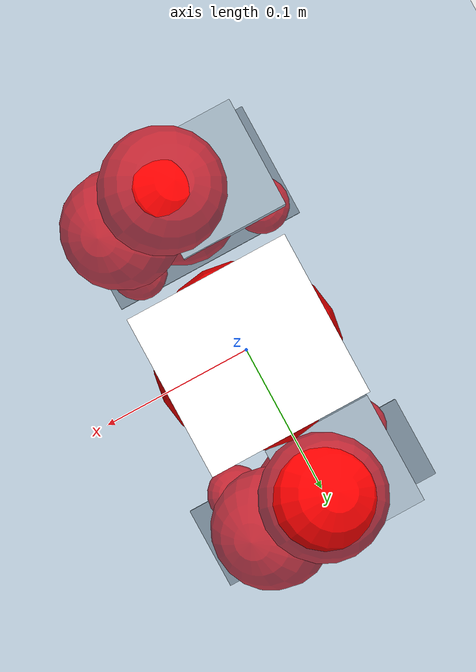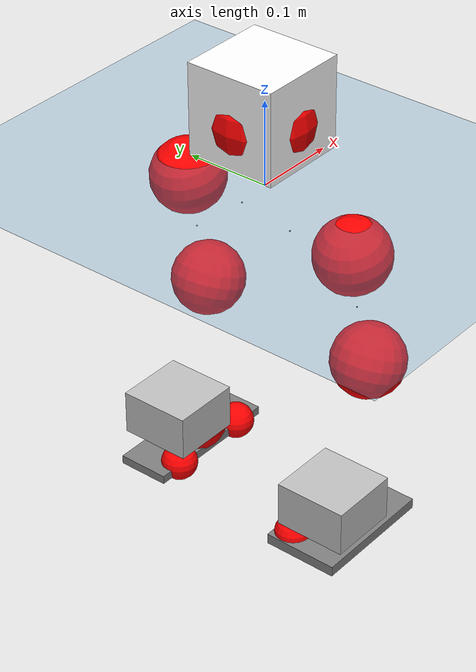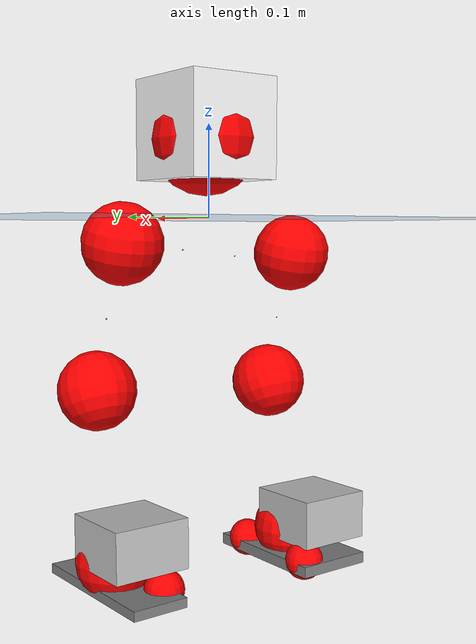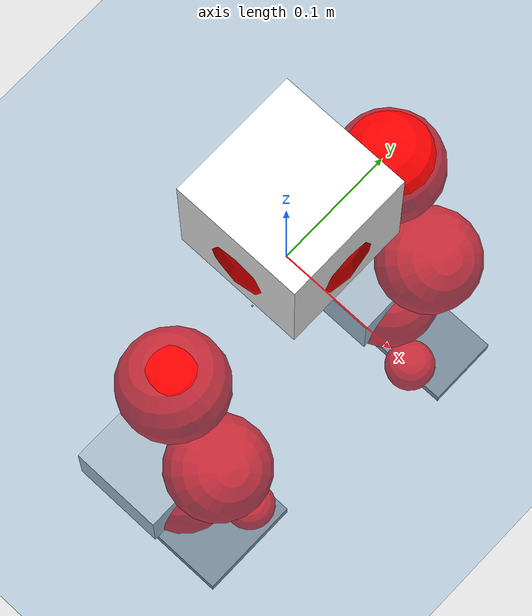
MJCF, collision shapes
<mujoco model="pi_12dof_release_v1">
  <compiler angle="radian" assetdir="assets" balanceinertia="true" inertiafromgeom="false"/>

  <option timestep="0.005" density="1.2" viscosity="2e-05"/>

  <size nkey="1"/>

  <visual>
    <quality shadowsize="8192"/>
    <map shadowclip="0.5"/>
  </visual>

  <default>
    <default class="/">
      <joint armature="0.01" damping="0.01" frictionloss="0.01"/>
      <geom contype="0" conaffinity="0" group="1" solref="-1000 -80"/>
      <site size="0.01 0.005 0.005" group="5"/>
      <general forcelimited="true" biastype="affine" gainprm="20" biasprm="0 -20 -0.5"/>
      <default class="foot">
        <geom size="0.0845 0.036 0.005" type="box" condim="6" group="4" priority="1" friction="0.9 0.2 0.2" solimp="0.015 1 0.005"/>
      </default>
      <default class="reward_collision_sphere">
        <geom group="5" rgba="1 0 0 1"/>
      </default>
    </default>
  </default>

  <asset>
    <texture type="skybox" colorspace="auto" name="//unnamed_texture_0" builtin="gradient" rgb1="0.95 0.95 0.95" rgb2="0.95 0.95 0.95" width="100" height="600"/>
    <texture type="2d" colorspace="auto" name="texplane" builtin="checker" rgb1="0.345 0.575 0.748" rgb2="0.345 0.575 0.748" markrgb="1 1 1" width="512" height="512"/>
    <material name="MatPlane" class="/" texture="texplane" texuniform="true" texrepeat="2 2" specular="0.9"/>
    <mesh name="baselink_1" class="/" file="baselink_1.STL"/>
    <mesh name="r_hip_pitch_link" class="/" file="r_hip_pitch_link.STL"/>
    <mesh name="r_hip_roll_link" class="/" file="r_hip_roll_link.STL"/>
    <mesh name="r_thigh_link" class="/" file="r_thigh_link.STL"/>
    <mesh name="r_calf_link" class="/" file="r_calf_link.STL"/>
    <mesh name="r_ankle_pitch_link" class="/" file="r_ankle_pitch_link.STL"/>
    <mesh name="r_ankle_roll_link" class="/" file="r_ankle_roll_link.STL"/>
    <mesh name="l_hip_pitch_link" class="/" file="l_hip_pitch_link.STL"/>
    <mesh name="l_hip_roll_link" class="/" file="l_hip_roll_link.STL"/>
    <mesh name="l_thigh_link" class="/" file="l_thigh_link.STL"/>
    <mesh name="l_calf_link" class="/" file="l_calf_link.STL"/>
    <mesh name="l_ankle_pitch_link" class="/" file="l_ankle_pitch_link.STL"/>
    <mesh name="l_ankle_roll_link" class="/" file="l_ankle_roll_link.STL"/>
  </asset>

  <worldbody>
    <geom name="floor" class="/" size="100 100 0.125" type="plane" group="0" material="MatPlane"/>
    <light name="toplight_shadow" class="/" pos="0 0 5" dir="0.0990148 0.0990148 -0.990148" type="directional" ambient="0.04 0.04 0.04" diffuse="0.55 0.55 0.55" specular="0.12 0.12 0.12"/>
    <light name="toplight_fill" class="/" pos="0 0 5" dir="0.0990148 0.0990148 -0.990148" type="directional" castshadow="false" ambient="0.04 0.04 0.04" diffuse="0.3 0.3 0.3" specular="0.08 0.08 0.08"/>
    <body name="trunk" pos="0.000540918 0.0035917 0.00204004" quat="1 -8.56728e-06 -4.77236e-06 -2.27978e-06">
      <inertial pos="0.00344375 0.00418447 0.0462173" quat="0.714122 0.0390438 0.00604355 0.698905" mass="2.69132" diaginertia="0.00245028 0.0341762 0.00816353"/>
      <joint name="//unnamed_joint_0" type="free"/>
      <geom name="//unnamed_geom_1" class="/" type="mesh" density="0" rgba="1 1 1 1" mesh="baselink_1"/>
      <geom name="//unnamed_geom_2" class="/" size="0.0534957 0.0534957 0.0534957" pos="0 0 0.0914554" type="box" rgba="1 1 1 1"/>
      <geom name="//unnamed_geom_3" class="reward_collision_sphere" size="0.0588453" pos="0 0 0.0800235"/>
      <site name="imu" class="/" pos="-0.0164043 -0.00577185 0.0178849" size="0.0106991"/>
      <camera name="track" class="/" pos="0 -2.61633 0" quat="0.707107 0.707107 0 0" mode="trackcom"/>
      <camera name="ego_camera" class="/" pos="0.0568788 0 0.205775" quat="-0.5 -0.5 0.5 0.5"/>
      <body name="r_hip_pitch_link" pos="-0.00192498 -0.0380239 -0.0436615" quat="0.992408 -0.000849735 -0.122987 0.000694421">
        <inertial pos="-0.00056246 -0.0723283 -0.000659696" quat="-0.0170169 0.700895 -0.020749 0.71276" mass="0.468118" diaginertia="2.72298e-05 0.000402909 0.000159203"/>
        <joint name="r_hip_pitch_joint" class="/" pos="0 0 0" axis="-0.000418355 -0.999997 0.00227266" stiffness="0.00394858" range="-1.76092 1.26871" armature="0.0110266" damping="0.0106965" frictionloss="0.00970916"/>
        <geom name="//unnamed_geom_4" class="/" type="mesh" density="0" rgba="0.75294 0.75294 0.75294 1" mesh="r_hip_pitch_link"/>
        <geom name="//unnamed_geom_5" class="/" size="0.000534957 0.000534957 0.000534957" type="box" rgba="0.75294 0.75294 0.75294 1"/>
        <body name="r_hip_roll_link" pos="0.000462548 -0.0819151 0.00237451" quat="0.999999 -0.00044554 -0.000419763 -0.00122667">
          <inertial pos="-0.00399003 -0.00116713 -0.0710866" quat="0.691073 -0.092414 -0.0901896 0.711157" mass="0.476533" diaginertia="8.76634e-05 0.00107802 0.000250971"/>
          <joint name="r_hip_roll_joint" class="/" pos="0 0 0" axis="-0.999945 -0.00575406 -0.00877899" stiffness="0.0114253" range="-0.131598 0.411732" armature="0.0119743" damping="0.0583478" frictionloss="0.00975792"/>
          <geom name="//unnamed_geom_6" class="/" type="mesh" density="0" rgba="0.75294 0.75294 0.75294 1" mesh="r_hip_roll_link"/>
          <geom name="//unnamed_geom_7" class="/" size="0.000534957 0.000534957 0.000534957" type="box" rgba="0.75294 0.75294 0.75294 1"/>
          <geom name="//unnamed_geom_8" class="reward_collision_sphere" size="0.0427966"/>
          <body name="r_thigh_link" pos="-0.00108711 0.00597805 -0.0774838" quat="1 0.000105541 0.000117534 -0.000385642">
            <inertial pos="-0.00197692 0.00126271 -0.0471807" quat="0.738077 0.674711 -0.00256169 0.000663502" mass="0.133403" diaginertia="3.24865e-05 0.000331507 0.000121913"/>
            <joint name="r_thigh_joint" class="/" pos="0 0 0" axis="-0.00255979 0.0101207 -0.999946" stiffness="0.00625915" range="-0.24912 0.584086" armature="0.0105925" damping="0.00954924" frictionloss="0.010724"/>
            <geom name="//unnamed_geom_9" class="/" type="mesh" density="0" rgba="0.75294 0.75294 0.75294 1" mesh="r_thigh_link"/>
            <geom name="//unnamed_geom_10" class="/" size="0.000534957 0.000534957 0.000534957" type="box" rgba="0.75294 0.75294 0.75294 1"/>
            <body name="r_calf_link" pos="-0.000514312 -0.00320386 -0.0794913" quat="0.947549 0.000149009 0.31961 5.06108e-05">
              <inertial pos="-0.00124194 0.000636746 -0.0779106" quat="0.999986 -0.00371227 -0.00201165 -0.0032771" mass="1.08561" diaginertia="0.000889449 0.0151122 0.000332148"/>
              <joint name="r_calf_joint" class="/" pos="0 0 0" axis="0.00541013 -0.999983 0.00225236" stiffness="0.0026599" range="-1.80807 0.633753" armature="0.00975923" damping="0.0026077" frictionloss="0.0104601"/>
              <geom name="//unnamed_geom_11" class="/" type="mesh" density="0" rgba="0.75294 0.75294 0.75294 1" mesh="r_calf_link"/>
              <geom name="//unnamed_geom_12" class="/" size="0.000534957 0.000534957 0.000534957" type="box" rgba="0.75294 0.75294 0.75294 1"/>
              <geom name="//unnamed_geom_13" class="reward_collision_sphere" size="0.0427966"/>
              <body name="r_ankle_pitch_link" pos="-0.0062067 -0.00742712 -0.16184" quat="0.980051 -0.000193999 -0.198745 9.6455e-05">
                <inertial pos="0.00399187 0.0120157 -0.00240134" quat="-0.00341131 0.709893 -0.00550044 0.70428" mass="0.196707" diaginertia="7.47514e-05 0.000803451 0.00021934"/>
                <joint name="r_ankle_pitch_joint" class="/" pos="0 0 0" axis="0.00249345 -0.999501 -0.0314846" stiffness="0.00698623" range="-1.30349 0.37861" armature="0.0114353" damping="0" frictionloss="0.0102535"/>
                <geom name="//unnamed_geom_14" class="/" type="mesh" density="0" rgba="0.75294 0.75294 0.75294 1" mesh="r_ankle_pitch_link"/>
                <geom name="//unnamed_geom_15" class="/" size="0.0417267 0.0427966 0.0267479" type="box" rgba="0.75294 0.75294 0.75294 1"/>
                <body name="r_ankle_roll_link" pos="0.0639706 0.00702893 0.00210272" quat="0.999997 0.0013761 -0.00162145 0.00119116">
                  <inertial pos="-0.0171966 -7.92594e-05 -0.019054" quat="0.565681 0.426177 0.430258 0.559693" mass="0.654189" diaginertia="0.000292347 0.00393276 0.000564628"/>
                  <joint name="r_ankle_roll_joint" class="/" pos="0 0 0" axis="-1 0.000760697 -0.000528931" range="-0.0112013 0.153541" armature="0.0108024" damping="0" frictionloss="0.011022"/>
                  <geom name="//unnamed_geom_16" class="/" type="mesh" density="0" rgba="0.75294 0.75294 0.75294 1" mesh="r_ankle_roll_link"/>
                  <geom name="//unnamed_geom_17" class="/" type="mesh" rgba="0.75294 0.75294 0.75294 1" mesh="r_ankle_roll_link"/>
                  <geom name="right_foot" class="foot" size="0.0746869 0.0445324 0.00617633" pos="-0.0386776 0 -0.0503005"/>
                  <geom name="//unnamed_geom_19" class="reward_collision_sphere" size="0.0427966" pos="-0.0379192 0 -0.0228639"/>
                  <geom name="//unnamed_geom_20" class="reward_collision_sphere" size="0.0213983" pos="0.0113758 0.0261633 -0.0457277"/>
                  <geom name="//unnamed_geom_21" class="reward_collision_sphere" size="0.0213983" pos="-0.0910061 0.0261633 -0.0457277"/>
                  <site name="right_foot" class="foot" pos="-0.0386776 0 -0.0503005" size="0.0106991"/>
                </body>
              </body>
            </body>
          </body>
        </body>
      </body>
      <body name="l_hip_pitch_link" pos="0.00130389 0.0291341 -0.035927" quat="0.992186 -0.000547312 -0.124768 -7.67386e-05">
        <inertial pos="0.000453573 0.0754236 -0.00103408" quat="-0.0396969 0.710405 0.0261846 0.702184" mass="0.488231" diaginertia="3.20378e-05 0.000405209 0.000198341"/>
        <joint name="l_hip_pitch_joint" class="/" pos="0 0 0" axis="0.00360679 0.999992 0.00154412" range="-1.25347 1.7504" armature="0.00998829" damping="0.0251506" frictionloss="0.00946862"/>
        <geom name="//unnamed_geom_22" class="/" type="mesh" density="0" rgba="0.75294 0.75294 0.75294 1" mesh="l_hip_pitch_link"/>
        <geom name="//unnamed_geom_23" class="/" size="0.000534957 0.000534957 0.000534957" type="box" rgba="0.75294 0.75294 0.75294 1"/>
        <body name="l_hip_roll_link" pos="0.00145628 0.0743647 0.00701551" quat="1 0.000532575 8.22308e-05 -3.68205e-06">
          <inertial pos="0.00264715 -0.00190127 -0.0631223" quat="0.699617 -0.0791501 -0.0728452 0.706374" mass="0.433785" diaginertia="8.25849e-05 0.00107867 0.000246927"/>
          <joint name="l_hip_roll_joint" class="/" pos="0 0 0" axis="-0.99981 -0.0171855 0.00920229" range="-0.375129 0.130832" armature="0.00846415" damping="0.0131218" frictionloss="0.0111196"/>
          <geom name="//unnamed_geom_24" class="/" type="mesh" density="0" rgba="0.75294 0.75294 0.75294 1" mesh="l_hip_roll_link"/>
          <geom name="//unnamed_geom_25" class="/" size="0.000534957 0.000534957 0.000534957" type="box" rgba="0.75294 0.75294 0.75294 1"/>
          <geom name="//unnamed_geom_26" class="reward_collision_sphere" size="0.0427966"/>
          <body name="l_thigh_link" pos="0.00118267 0.00766 -0.0807043" quat="1 -0.000535443 0.000419708 0.00019722">
            <inertial pos="-0.000337857 -0.0022403 -0.0573966" quat="0.679753 0.733424 0.00196308 0.00459249" mass="0.132621" diaginertia="2.88348e-05 0.000348698 0.000110091"/>
            <joint name="l_thigh_joint" class="/" pos="0 0 0" axis="0.000887171 0.00123058 -0.999999" range="-0.559435 0.28925" armature="0.0116957" damping="0" frictionloss="0.0110673"/>
            <geom name="//unnamed_geom_27" class="/" type="mesh" density="0" rgba="0.75294 0.75294 0.75294 1" mesh="l_thigh_link"/>
            <geom name="//unnamed_geom_28" class="/" size="0.000534957 0.000534957 0.000534957" type="box" rgba="0.75294 0.75294 0.75294 1"/>
            <body name="l_calf_link" pos="-0.000327754 0.0011494 -0.0805497" quat="0.947322 -0.000380364 0.320275 0.00214301">
              <inertial pos="0.001917 0.000336312 -0.0775804" quat="0.999897 0.00304299 -0.0018789 0.0138798" mass="0.998372" diaginertia="0.000833846 0.0133325 0.000310707"/>
              <joint name="l_calf_joint" class="/" pos="0 0 0" axis="-0.00224349 0.999952 -0.00958133" range="-0.610634 1.64236" armature="0.0115064" damping="0.0157073" frictionloss="0.0112384"/>
              <geom name="//unnamed_geom_29" class="/" type="mesh" density="0" rgba="0.75294 0.75294 0.75294 1" mesh="l_calf_link"/>
              <geom name="//unnamed_geom_30" class="/" size="0.000534957 0.000534957 0.000534957" type="box" rgba="0.75294 0.75294 0.75294 1"/>
              <geom name="//unnamed_geom_31" class="reward_collision_sphere" size="0.0427966"/>
              <body name="l_ankle_pitch_link" pos="0.0014823 -0.00252573 -0.160686" quat="0.98057 -0.000352671 -0.196169 -0.000913184">
                <inertial pos="0.00448337 0.00446661 -0.00133463" quat="-0.00537061 0.703461 0.0104949 0.710636" mass="0.223395" diaginertia="8.05706e-05 0.00087673 0.00023784"/>
                <joint name="l_ankle_pitch_joint" class="/" pos="0 0 0" axis="0.00230775 0.999995 -0.00233229" range="-0.430357 1.26582" armature="0.0118374" damping="0.0169854" frictionloss="0.010617"/>
                <geom name="//unnamed_geom_32" class="/" type="mesh" density="0" rgba="0.75294 0.75294 0.75294 1" mesh="l_ankle_pitch_link"/>
                <geom name="//unnamed_geom_33" class="/" size="0.0417267 0.0427966 0.0267479" type="box" rgba="0.75294 0.75294 0.75294 1"/>
                <body name="l_ankle_roll_link" pos="0.0652732 0.00309605 -0.00330101" quat="1 -2.49135e-05 0.000100695 3.1092e-05">
                  <inertial pos="-0.0260959 0.000479357 -0.0181019" quat="0.55907 0.431361 0.43693 0.55719" mass="0.622807" diaginertia="0.000264079 0.00388595 0.000568987"/>
                  <joint name="l_ankle_roll_joint" class="/" pos="0 0 0" axis="-0.999336 0.0361485 0.00466546" range="-0.296419 0.218441" armature="0.00767714" damping="0" frictionloss="0.0132244"/>
                  <geom name="//unnamed_geom_34" class="/" type="mesh" density="0" rgba="0.75294 0.75294 0.75294 1" mesh="l_ankle_roll_link"/>
                  <geom name="//unnamed_geom_35" class="/" type="mesh" rgba="0.75294 0.75294 0.75294 1" mesh="l_ankle_roll_link"/>
                  <geom name="left_foot" class="foot" size="0.0861822 0.031195 0.00519432" pos="-0.0386776 0 -0.0503005"/>
                  <geom name="//unnamed_geom_37" class="reward_collision_sphere" size="0.0427966" pos="-0.0379192 0 -0.0228639"/>
                  <geom name="//unnamed_geom_38" class="reward_collision_sphere" size="0.0213983" pos="0.0113758 -0.0261633 -0.0457277"/>
                  <geom name="//unnamed_geom_39" class="reward_collision_sphere" size="0.0213983" pos="-0.0910061 -0.0261633 -0.0457277"/>
                  <site name="left_foot" class="foot" pos="-0.0386776 0 -0.0503005" size="0.0106991"/>
                </body>
              </body>
            </body>
          </body>
        </body>
      </body>
    </body>
  </worldbody>

  <contact>
    <pair class="/" geom1="floor" geom2="right_foot" name="//unnamed_contact_1"/>
    <pair class="/" geom1="floor" geom2="left_foot" name="//unnamed_contact_0"/>
  </contact>

  <actuator>
    <general name="r_hip_pitch_joint" class="/" joint="r_hip_pitch_joint" forcerange="-21.082 21.082" gainprm="22.1804" biasprm="0 -22.1804 -0.529177"/>
    <general name="r_hip_roll_joint" class="/" joint="r_hip_roll_joint" forcerange="-21.9744 21.9744" gainprm="22.1804" biasprm="0 -22.1804 -0.529177"/>
    <general name="r_thigh_joint" class="/" joint="r_thigh_joint" forcerange="-20.5084 20.5084" gainprm="22.1804" biasprm="0 -22.1804 -0.529177"/>
    <general name="r_calf_joint" class="/" joint="r_calf_joint" forcerange="-26.811 26.811" gainprm="22.1804" biasprm="0 -22.1804 -0.529177"/>
    <general name="r_ankle_pitch_joint" class="/" joint="r_ankle_pitch_joint" forcerange="-17.2916 17.2916" gainprm="22.1804" biasprm="0 -22.1804 -0.529177"/>
    <general name="r_ankle_roll_joint" class="/" joint="r_ankle_roll_joint" forcerange="-17.2225 17.2225" gainprm="22.1804" biasprm="0 -22.1804 -0.529177"/>
    <general name="l_hip_pitch_joint" class="/" joint="l_hip_pitch_joint" forcerange="-15.917 15.917" gainprm="22.1804" biasprm="0 -22.1804 -0.529177"/>
    <general name="l_hip_roll_joint" class="/" joint="l_hip_roll_joint" forcerange="-24.4572 24.4572" gainprm="22.1804" biasprm="0 -22.1804 -0.529177"/>
    <general name="l_thigh_joint" class="/" joint="l_thigh_joint" forcerange="-21.2574 21.2574" gainprm="22.1804" biasprm="0 -22.1804 -0.529177"/>
    <general name="l_calf_joint" class="/" joint="l_calf_joint" forcerange="-17.2678 17.2678" gainprm="22.1804" biasprm="0 -22.1804 -0.529177"/>
    <general name="l_ankle_pitch_joint" class="/" joint="l_ankle_pitch_joint" forcerange="-17.2417 17.2417" gainprm="22.1804" biasprm="0 -22.1804 -0.529177"/>
    <general name="l_ankle_roll_joint" class="/" joint="l_ankle_roll_joint" forcerange="-20.6322 20.6322" gainprm="22.1804" biasprm="0 -22.1804 -0.529177"/>
  </actuator>

  <sensor>
    <gyro site="imu" name="imu_angular_velocity"/>
    <velocimeter site="imu" name="imu_linear_velocity"/>
    <framelinvel objtype="site" objname="left_foot" name="left_foot_global_linear_velocity"/>
    <framelinvel objtype="site" objname="right_foot" name="right_foot_global_linear_velocity"/>
  </sensor>

  <keyframe>
    <key name="home" qpos="0 0 0.291 1 0 0 0 0.4 0 0 -0.8 0.4 0 -0.4 0 0 0.8 -0.4 0"/>
  </keyframe>
</mujoco>
